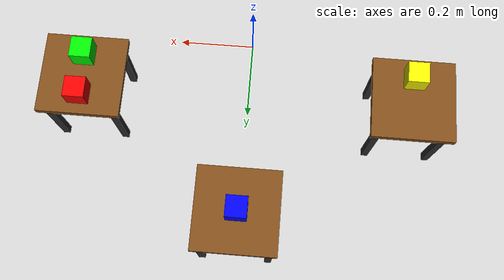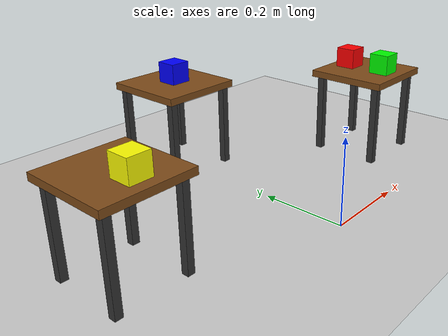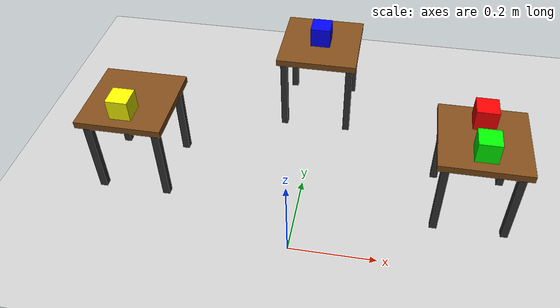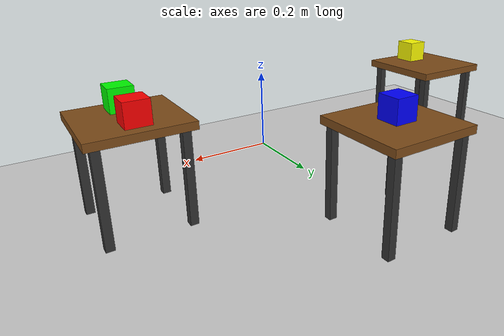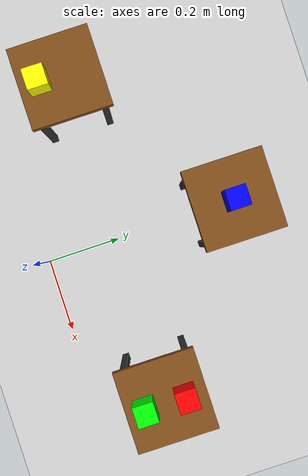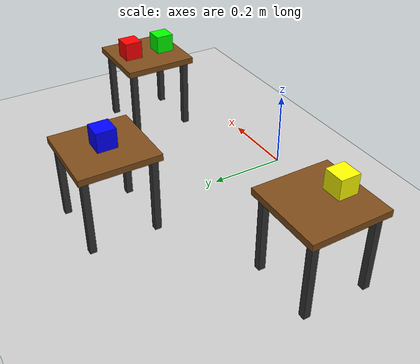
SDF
<?xml version="1.0" ?>
<sdf version="1.8">
    <world name='modifiedempty'>

        <plugin
            filename="libignition-gazebo-physics-system.so"
            name="ignition::gazebo::systems::Physics">
        </plugin>
        <plugin
            filename="libignition-gazebo-user-commands-system.so"
            name="ignition::gazebo::systems::UserCommands">
        </plugin>
        <plugin
            filename="libignition-gazebo-scene-broadcaster-system.so"
            name="ignition::gazebo::systems::SceneBroadcaster">
        </plugin>

        <scene>
            <ambient>0.4 0.4 0.4 1</ambient>
            <background>0.7 0.7 0.7 1</background>
            <sky>
                <clouds>
                    <speed>12</speed>
                    <direction>1.57</direction>
                    <humidity>0.5</humidity>
                </clouds>
                <ambient>0.6 0.8 1.0 1.0</ambient>
                <blue_horizon>0.8 0.9 1.0 1.0</blue_horizon>
                <blue_sky>0.5 0.7 0.9 1.0</blue_sky>
            </sky>
        </scene>

        <light type="directional" name="sun">
            <cast_shadows>true</cast_shadows>
            <pose>0 0 10 0 0 0</pose>
            <diffuse>0.8 0.8 0.8 1</diffuse>
            <specular>0.2 0.2 0.2 1</specular>
            <direction>-0.5 0.1 -0.9</direction>
        </light>

        <model name="ground_plane">
            <static>true</static>
            <link name="link">
                <collision name="collision">
                    <geometry><plane><normal>0 0 1</normal><size>100 100</size></plane></geometry>
                </collision>
                <visual name="visual">
                    <geometry><plane><normal>0 0 1</normal><size>100 100</size></plane></geometry>
                    <material>
                        <ambient>0.8 0.8 0.8 1</ambient>
                        <diffuse>0.8 0.8 0.8 1</diffuse>
                        <specular>0.8 0.8 0.8 1</specular>
                    </material>
                </visual>
            </link>
        </model>

        <model name="mini_table">
            <static>true</static>
            <pose>0 0.5 0 0 0 0</pose>
            <link name="link">
                <visual name="top_visual">
                    <pose>0 0 0.20835 0 0 0</pose>
                    <geometry><box><size>0.2 0.2 0.0167</size></box></geometry>
                    <material><ambient>0.5 0.3 0.1 1</ambient><diffuse>0.5 0.3 0.1 1</diffuse></material>
                </visual>
                <collision name="top_collision">
                    <pose>0 0 0.20835 0 0 0</pose>
                    <geometry><box><size>0.2 0.2 0.0167</size></box></geometry>
                </collision>
                <visual name="leg1"><pose>0.083 0.083 0.1 0 0 0</pose><geometry><box><size>0.0167 0.0167 0.2</size></box></geometry><material><ambient>0.2 0.2 0.2 1</ambient><diffuse>0.2 0.2 0.2 1</diffuse></material></visual>
                <visual name="leg2"><pose>0.083 -0.083 0.1 0 0 0</pose><geometry><box><size>0.0167 0.0167 0.2</size></box></geometry><material><ambient>0.2 0.2 0.2 1</ambient><diffuse>0.2 0.2 0.2 1</diffuse></material></visual>
                <visual name="leg3"><pose>-0.083 0.083 0.1 0 0 0</pose><geometry><box><size>0.0167 0.0167 0.2</size></box></geometry><material><ambient>0.2 0.2 0.2 1</ambient><diffuse>0.2 0.2 0.2 1</diffuse></material></visual>
                <visual name="leg4"><pose>-0.083 -0.083 0.1 0 0 0</pose><geometry><box><size>0.0167 0.0167 0.2</size></box></geometry><material><ambient>0.2 0.2 0.2 1</ambient><diffuse>0.2 0.2 0.2 1</diffuse></material></visual>
                <collision name="legs_col">
                    <pose>0 0 0.1 0 0 0</pose>
                    <geometry><box><size>0.18 0.18 0.2</size></box></geometry>
                </collision>
            </link>
        </model>

        <model name="blue_cube">
            <pose>0 0.5 0.2417 0 0 0</pose>
            <link name="link">
                <inertial><mass>0.1</mass><inertia><ixx>0.00004</ixx><ixy>0</ixy><ixz>0</ixz><iyy>0.00004</iyy><iyz>0</iyz><izz>0.00004</izz></inertia></inertial>
                <collision name="c"><geometry><box><size>0.05 0.05 0.05</size></box></geometry></collision>
                <visual name="v"><geometry><box><size>0.05 0.05 0.05</size></box></geometry>
                    <material><ambient>0 0 1 1</ambient><diffuse>0 0 1 1</diffuse></material>
                </visual>
            </link>
        </model>

        <model name="mini_table_2">
            <static>true</static>
            <pose>0.4 0.2 0 0 0 0</pose>
            <link name="link">
                <visual name="top"><pose>0 0 0.20835 0 0 0</pose><geometry><box><size>0.2 0.2 0.0167</size></box></geometry><material><ambient>0.5 0.3 0.1 1</ambient><diffuse>0.5 0.3 0.1 1</diffuse></material></visual>
                <collision name="top"><pose>0 0 0.20835 0 0 0</pose><geometry><box><size>0.2 0.2 0.0167</size></box></geometry></collision>

                <visual name="l1"><pose>0.08 0.08 0.1 0 0 0</pose><geometry><box><size>0.017 0.017 0.2</size></box></geometry><material><ambient>0.2 0.2 0.2 1</ambient><diffuse>0.2 0.2 0.2 1</diffuse></material></visual>
                <visual name="l2"><pose>0.08 -0.08 0.1 0 0 0</pose><geometry><box><size>0.017 0.017 0.2</size></box></geometry><material><ambient>0.2 0.2 0.2 1</ambient><diffuse>0.2 0.2 0.2 1</diffuse></material></visual>
                <visual name="l3"><pose>-0.08 0.08 0.1 0 0 0</pose><geometry><box><size>0.017 0.017 0.2</size></box></geometry><material><ambient>0.2 0.2 0.2 1</ambient><diffuse>0.2 0.2 0.2 1</diffuse></material></visual>
                <visual name="l4"><pose>-0.08 -0.08 0.1 0 0 0</pose><geometry><box><size>0.017 0.017 0.2</size></box></geometry><material><ambient>0.2 0.2 0.2 1</ambient><diffuse>0.2 0.2 0.2 1</diffuse></material></visual>
                <collision name="legs"><pose>0 0 0.1 0 0 0</pose><geometry><box><size>0.18 0.18 0.2</size></box></geometry></collision>
            </link>
        </model>

        <model name="green_cube">
            <pose>0.4 0.15 0.2417 0 0 0</pose>
            <link name="link">
                <inertial><mass>0.1</mass><inertia><ixx>0.00004</ixx><ixy>0</ixy><ixz>0</ixz><iyy>0.00004</iyy><iyz>0</iyz><izz>0.00004</izz></inertia></inertial>
                <collision name="c"><geometry><box><size>0.05 0.05 0.05</size></box></geometry></collision>
                <visual name="v"><geometry><box><size>0.05 0.05 0.05</size></box></geometry>
                    <material><ambient>0 1 0 1</ambient><diffuse>0 1 0 1</diffuse></material>
                </visual>
            </link>
        </model>

        <model name="red_cube">
            <pose>0.4 0.25 0.2417 0 0 0</pose>
            <link name="link">
                <inertial><mass>0.1</mass><inertia><ixx>0.00004</ixx><ixy>0</ixy><ixz>0</ixz><iyy>0.00004</iyy><iyz>0</iyz><izz>0.00004</izz></inertia></inertial>
                <collision name="c"><geometry><box><size>0.05 0.05 0.05</size></box></geometry></collision>
                <visual name="v"><geometry><box><size>0.05 0.05 0.05</size></box></geometry>
                    <material><ambient>1 0 0 1</ambient><diffuse>1 0 0 1</diffuse></material>
                </visual>
            </link>
        </model>

        <model name="mini_table_3">
            <static>true</static>
            <pose>-0.4 0.2 0 0 0 0</pose>
            <link name="link">
                <visual name="top"><pose>0 0 0.20835 0 0 0</pose><geometry><box><size>0.2 0.2 0.0167</size></box></geometry><material><ambient>0.5 0.3 0.1 1</ambient><diffuse>0.5 0.3 0.1 1</diffuse></material></visual>
                <collision name="top"><pose>0 0 0.20835 0 0 0</pose><geometry><box><size>0.2 0.2 0.0167</size></box></geometry></collision>

                <visual name="l1"><pose>0.08 0.08 0.1 0 0 0</pose><geometry><box><size>0.017 0.017 0.2</size></box></geometry><material><ambient>0.2 0.2 0.2 1</ambient><diffuse>0.2 0.2 0.2 1</diffuse></material></visual>
                <visual name="l2"><pose>0.08 -0.08 0.1 0 0 0</pose><geometry><box><size>0.017 0.017 0.2</size></box></geometry><material><ambient>0.2 0.2 0.2 1</ambient><diffuse>0.2 0.2 0.2 1</diffuse></material></visual>
                <visual name="l3"><pose>-0.08 0.08 0.1 0 0 0</pose><geometry><box><size>0.017 0.017 0.2</size></box></geometry><material><ambient>0.2 0.2 0.2 1</ambient><diffuse>0.2 0.2 0.2 1</diffuse></material></visual>
                <visual name="l4"><pose>-0.08 -0.08 0.1 0 0 0</pose><geometry><box><size>0.017 0.017 0.2</size></box></geometry><material><ambient>0.2 0.2 0.2 1</ambient><diffuse>0.2 0.2 0.2 1</diffuse></material></visual>
                <collision name="legs"><pose>0 0 0.1 0 0 0</pose><geometry><box><size>0.18 0.18 0.2</size></box></geometry></collision>
            </link>
        </model>

        <model name="yellow_cube">
            <pose>-0.4 0.15 0.2417 0 0 0</pose>
            <link name="link">
                <inertial><mass>0.1</mass><inertia><ixx>0.00004</ixx><ixy>0</ixy><ixz>0</ixz><iyy>0.00004</iyy><iyz>0</iyz><izz>0.00004</izz></inertia></inertial>
                <collision name="c"><geometry><box><size>0.05 0.05 0.05</size></box></geometry></collision>
                <visual name="v"><geometry><box><size>0.05 0.05 0.05</size></box></geometry>
                    <material><ambient>1 1 0 1</ambient><diffuse>1 1 0 1</diffuse></material>
                </visual>
            </link>
        </model>

    </world>
</sdf>
